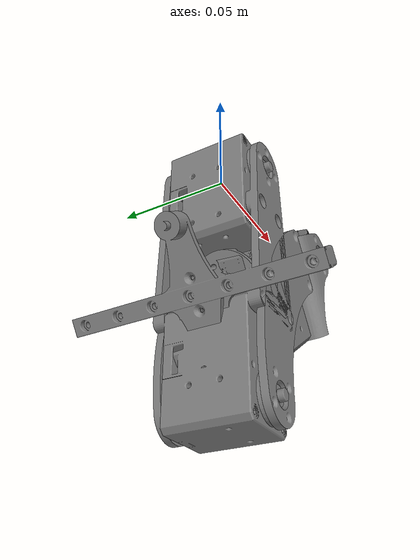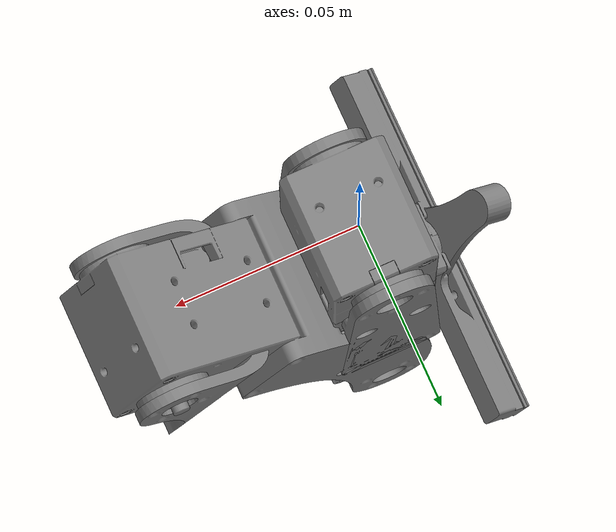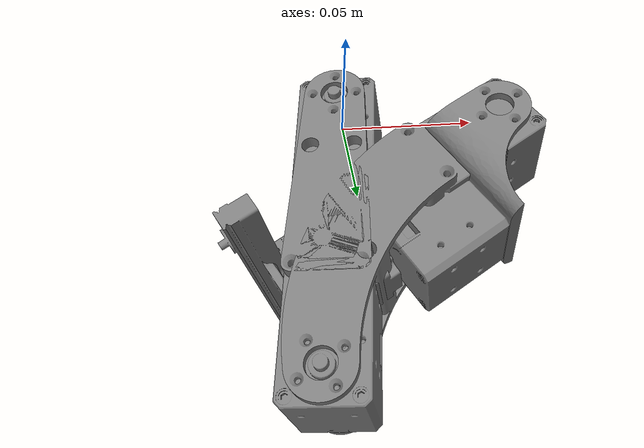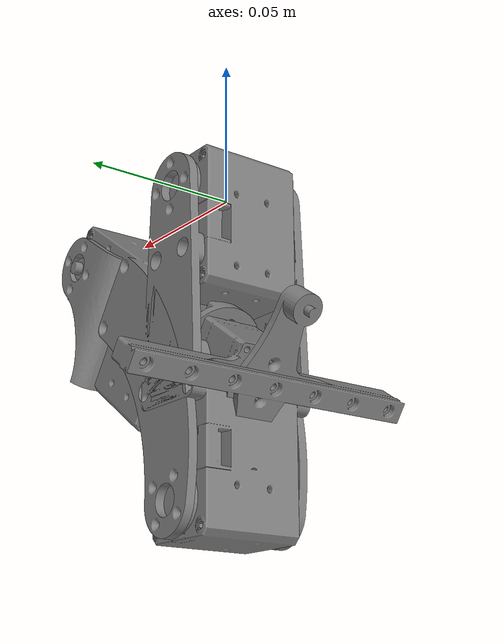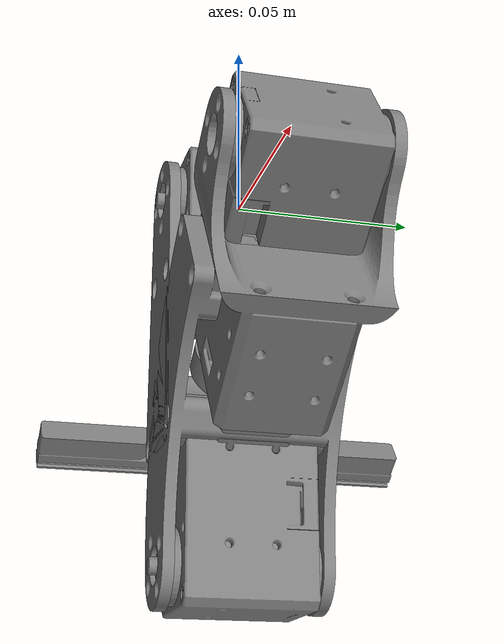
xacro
<?xml version="1.0"?>
<robot xmlns:xacro="http://www.ros.org/wiki/xacro" name="xavbot">
  <xacro:arg name="prefix" default="" />
  <xacro:arg name="standalone" default="true" />

  <!-- Import Geometry -->
  <xacro:include filename="$(find xavbot_description)/urdf/xavbot.arm.xacro" />
  <xacro:xavbot_arm prefix="$(arg prefix)" mesh_dir="package://xavbot_description/meshes" standalone="$(arg standalone)" />

  <!-- Import xavbot ros2_control description -->
  <xacro:include filename="$(find xavbot_description)/urdf/xavbot.arm.ros2_control.xacro" />
  <xacro:xavbot_arm_control name="xavbot" prefix="$(arg prefix)" />

  <!-- Import Rviz colors -->
  <xacro:if value="$(arg standalone)">
    <xacro:include filename="$(find xavbot_description)/urdf/xavbot.materials.xacro" />
  </xacro:if>

</robot>

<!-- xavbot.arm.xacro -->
<robot xmlns:xacro="http://www.ros.org/wiki/xacro" name="xavbot">

  <xacro:macro name="xavbot_arm" params="prefix='' mesh_dir='package://xavbot_description/meshes' standalone='true'">

  <!-- Constants for robot dimensions -->
  <xacro:property name="PI" value="3.1415926535897931"/>

      <!-- link0 -->
      <xacro:if value="${standalone}">
        <link name="${prefix}base_link" />
        <joint name="${prefix}link0_joint" type="fixed">
          <parent link="${prefix}base_link"/>
          <child link="${prefix}link0"/>
          <origin xyz="0 0 0" rpy="${PI/2} 0 0"/>
          <axis xyz="0 0 0"/>
          <dynamics damping="0.2"/>
          <limit
            lower="-${PI/2}"
            upper="${PI/2}"
            effort="4"
            velocity="6">
          </limit>
        </joint>
      </xacro:if>

      <xacro:unless value="${standalone}">
        <joint name="${prefix}link0_joint" type="fixed">
          <parent link="${prefix}base_link"/>
          <child link="${prefix}link0"/>
          <origin xyz="0.210 0.200 0.073" rpy="${PI/2} 0 0"/>
          <axis xyz="0 0 0"/>
          <dynamics damping="0.2"/>
          <limit
            lower="-${PI/2}"
            upper="${PI/2}"
            effort="4"
            velocity="6">
          </limit>
        </joint>
      </xacro:unless>

      <link name="${prefix}link0">
        <collision>
          <origin xyz="0 0 0" rpy="0 0 0"/>
          <geometry>
            <mesh filename="${mesh_dir}/collision/link0.stl" scale="0.001 0.001 0.001"/>
          </geometry>
        </collision>

        <visual>
          <origin xyz="0 0 0" rpy="0 0 0"/>
          <geometry>
            <mesh filename="${mesh_dir}/visual/link0.stl" scale="0.001 0.001 0.001"/>
          </geometry>
          <material name="grey"/>
        </visual>

        <inertial>
          <origin xyz="0 -0.013 0" rpy="0 0 0"/>
          <mass value="0.0572"/>
          <inertia
            ixx="${0.0572 / 12.0 * (0.0465*0.0465 + 0.034*0.034)}" ixy="0.0" ixz="0.0"
            iyy="${0.0572 / 12.0 * (0.034*0.034 + 0.0285*0.0285)}" iyz="0.0"
            izz="${0.0572 / 12.0 * (0.0285*0.0285 + 0.0465*0.0465)}"/>
        </inertial>
      </link>

      <!-- link1 -->
      <joint name="${prefix}link1_joint" type="revolute">
        <parent link="${prefix}link0"/>
        <child link="${prefix}link1"/>
        <origin xyz="0 0 0" rpy="0 0 0"/>
        <axis xyz="0 0 -1"/>
        <dynamics damping="0.2"/>
        <limit
          lower="${PI/2}"
          upper="${3* PI/2}"
          effort="4"
          velocity="6">
        </limit>
      </joint>

      <link name="${prefix}link1">
        <collision>
          <origin xyz="0 0 0" rpy="0 0 0"/>
          <geometry>
            <mesh filename="${mesh_dir}/collision/link1.stl" scale="0.001 0.001 0.001"/>
          </geometry>
        </collision>

        <visual>
          <origin xyz="0 0 0" rpy="0 0 0"/>
          <geometry>
            <mesh filename="${mesh_dir}/visual/link1.stl" scale="0.001 0.001 0.001"/>
          </geometry>
          <material name="grey"/>
        </visual>

        <inertial>
          <origin xyz="0 -0.013 0" rpy="0 0 0"/>
          <mass value="0.0572"/>
          <inertia
            ixx="${0.0572 / 12.0 * (0.0465*0.0465 + 0.034*0.034)}" ixy="0.0" ixz="0.0"
            iyy="${0.0572 / 12.0 * (0.034*0.034 + 0.0285*0.0285)}" iyz="0.0"
            izz="${0.0572 / 12.0 * (0.0285*0.0285 + 0.0465*0.0465)}"/>
        </inertial>
      </link>

      <!-- link2 -->
      <joint name="${prefix}link2_joint" type="revolute">
        <parent link="${prefix}link1"/>
        <child link="${prefix}link2"/>
        <origin xyz="0 0.1 0" rpy="0 0 0"/>
        <axis xyz="0 0 -1"/>
        <dynamics damping="0.2"/>
        <limit
          lower="${PI/9}"
          upper="${3 * PI/2}"
          effort="4"
          velocity="6">
        </limit>
      </joint>

      <link name="${prefix}link2">
        <collision>
          <origin xyz="0 0 0" rpy="0 0 0"/>
          <geometry>
            <mesh filename="${mesh_dir}/collision/link2.stl" scale="0.001 0.001 0.001"/>
          </geometry>
        </collision>

        <visual>
          <origin xyz="0 0 0" rpy="0 0 0"/>
          <geometry>
            <mesh filename="${mesh_dir}/visual/link2.stl" scale="0.001 0.001 0.001"/>
          </geometry>
          <material name="grey"/>
        </visual>
      </link>

      <!-- link3 -->
      <joint name="${prefix}link3_joint" type="revolute">
        <parent link="${prefix}link2"/>
        <child link="${prefix}link3"/>
        <origin xyz="0.1 0.04 0" rpy="0 0 ${-PI/2}"/>
        <axis xyz="0 0 -1 "/>
        <dynamics damping="0.2"/>
        <limit
          lower="${PI/2}"
          upper="${3 * PI/2}"
          effort="4"
          velocity="6">
        </limit>
      </joint>

      <link name="${prefix}link3">
        <collision>
          <origin xyz="0 0 0" rpy="0 0 0"/>
          <geometry>
            <mesh filename="${mesh_dir}/collision/link3.stl" scale="0.001 0.001 0.001"/>
          </geometry>
        </collision>

        <visual>
          <origin xyz="0 0 0" rpy="0 0 0"/>
          <geometry>
            <mesh filename="${mesh_dir}/visual/link3.stl" scale="0.001 0.001 0.001"/>
          </geometry>
          <material name="grey"/>
        </visual>
      </link>

      <!-- link4 -->
      <joint name="${prefix}link4_joint" type="revolute">
        <parent link="${prefix}link3"/>
        <child link="${prefix}link4"/>
        <origin xyz="0 0.061 0" rpy="${-PI/2} ${PI/2} 0"/>
        <axis xyz="0 0 1"/>
        <dynamics damping="0.2"/>
        <limit
          lower="-${PI}"
          upper="${PI}"
          effort="4"
          velocity="6">
        </limit>
      </joint>

      <link name="${prefix}link4">
        <collision>
          <origin xyz="0 0 0" rpy="0 0 0"/>
          <geometry>
            <mesh filename="${mesh_dir}/collision/link4.stl" scale="0.001 0.001 0.001"/>
          </geometry>
        </collision>

        <visual>
          <origin xyz="0 0 0" rpy="0 0 0"/>
          <geometry>
            <mesh filename="${mesh_dir}/visual/link4.stl" scale="0.001 0.001 0.001"/>
          </geometry>
          <material name="grey"/>
        </visual>
      </link>

      <!-- tool0 -->
      <joint name="${prefix}tool0_joint" type="fixed">
        <parent link="${prefix}link4"/>
        <child link="${prefix}tool0"/>
        <origin xyz="0 0 0.08" rpy="${PI/2} ${-PI/2} 0"/>
      </joint>

      <link name="${prefix}tool0"/>

  </xacro:macro>

</robot>

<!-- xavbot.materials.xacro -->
<robot>

  <material name="grey">
    <color rgba="0.5 0.5 0.5 1.0"/>
  </material>

  <material name="silver">
    <color rgba="0.7 0.7 0.7 1.0"/>
  </material>

  <material name="green">
    <color rgba="0.3 0.7 0.1 1.0"/>
  </material>

</robot>
